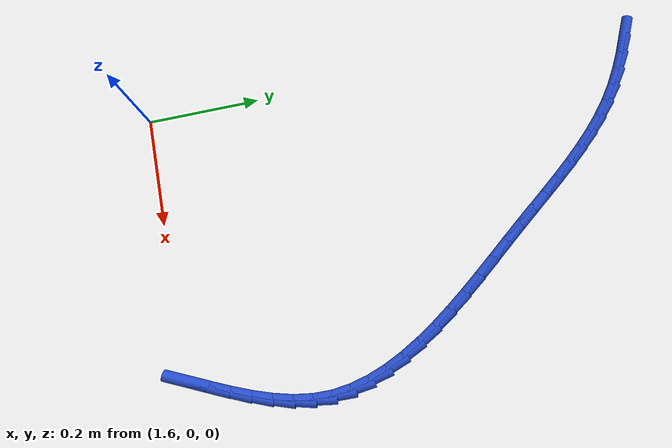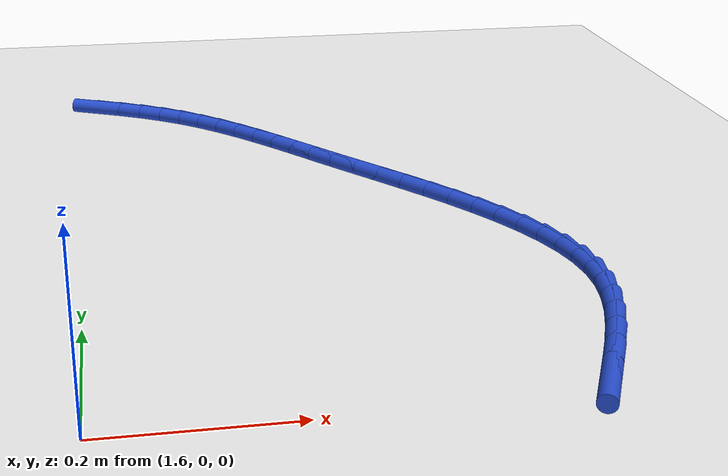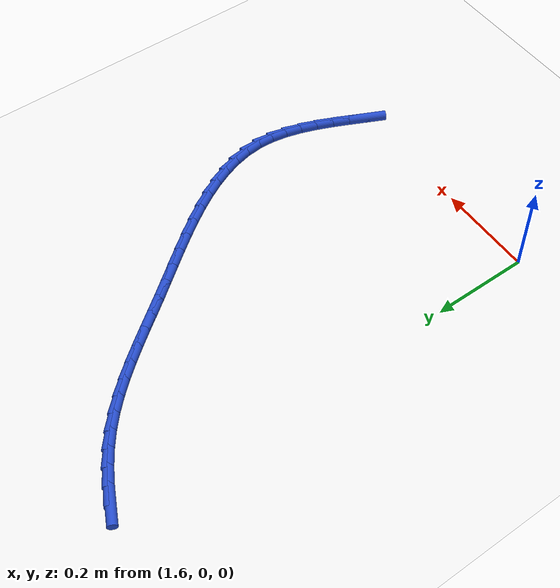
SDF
<sdf version="1.6">
 <world name="default">
  <model name="ground_plane">
   <static>1</static>
   <link name="link">
    <collision name="collision">
     <geometry><plane><normal>0 0 1</normal><size>100 100</size></plane></geometry>
     <surface><friction><ode><mu>100</mu><mu2>50</mu2></ode></friction></surface>
    </collision>
    <visual name="visual">
     <cast_shadows>0</cast_shadows>
     <geometry><plane><normal>0 0 1</normal><size>100 100</size></plane></geometry>
     <material>
      <script><uri>file://media/materials/scripts/gazebo.material</uri><name>Gazebo/WhiteGlow</name></script>
     </material>
    </visual>
   </link>
  </model>
  <model name="line">
   <link name="link_63">
    <pose>1.6247536107748575 0.8952613129556656 0.01 0 1.57 -0.44603642686886424</pose>
    <collision name="collision">
     <geometry><cylinder><radius>0.01</radius><length>0.08</length></cylinder></geometry>
    </collision>
    <visual name="visual">
     <material>
      <script><name>Gazebo/Blue</name><uri>file://media/materials/scripts/gazebo.material</uri></script>
     </material>
     <geometry><cylinder><radius>0.01</radius><length>0.08</length></cylinder></geometry>
    </visual>
   </link>
   <link name="link_64">
    <pose>1.6566459685300368 0.8800111548146987 0.01 0 1.57 -0.4962061280114834</pose>
    <collision name="collision">
     <geometry><cylinder><radius>0.01</radius><length>0.08</length></cylinder></geometry>
    </collision>
    <visual name="visual">
     <material>
      <script><name>Gazebo/Blue</name><uri>file://media/materials/scripts/gazebo.material</uri></script>
     </material>
     <geometry><cylinder><radius>0.01</radius><length>0.08</length></cylinder></geometry>
    </visual>
   </link>
   <link name="link_65">
    <pose>1.6873797987638326 0.863372273551867 0.01 0 1.57 -0.5567987017231645</pose>
    <collision name="collision">
     <geometry><cylinder><radius>0.01</radius><length>0.08</length></cylinder></geometry>
    </collision>
    <visual name="visual">
     <material>
      <script><name>Gazebo/Blue</name><uri>file://media/materials/scripts/gazebo.material</uri></script>
     </material>
     <geometry><cylinder><radius>0.01</radius><length>0.08</length></cylinder></geometry>
    </visual>
   </link>
   <link name="link_66">
    <pose>1.7167438791611238 0.8450931677503447 0.01 0 1.57 -0.627661396016519</pose>
    <collision name="collision">
     <geometry><cylinder><radius>0.01</radius><length>0.08</length></cylinder></geometry>
    </collision>
    <visual name="visual">
     <material>
      <script><name>Gazebo/Blue</name><uri>file://media/materials/scripts/gazebo.material</uri></script>
     </material>
     <geometry><cylinder><radius>0.01</radius><length>0.08</length></cylinder></geometry>
    </visual>
   </link>
   <link name="link_67">
    <pose>1.7445349018754455 0.8249296970740361 0.01 0 1.57 -0.6996685758827992</pose>
    <collision name="collision">
     <geometry><cylinder><radius>0.01</radius><length>0.08</length></cylinder></geometry>
    </collision>
    <visual name="visual">
     <material>
      <script><name>Gazebo/Blue</name><uri>file://media/materials/scripts/gazebo.material</uri></script>
     </material>
     <geometry><cylinder><radius>0.01</radius><length>0.08</length></cylinder></geometry>
    </visual>
   </link>
   <link name="link_68">
    <pose>1.7707724209945344 0.802845000381508 0.01 0 1.57 -0.7620269153508226</pose>
    <collision name="collision">
     <geometry><cylinder><radius>0.01</radius><length>0.08</length></cylinder></geometry>
    </collision>
    <visual name="visual">
     <material>
      <script><name>Gazebo/Blue</name><uri>file://media/materials/scripts/gazebo.material</uri></script>
     </material>
     <geometry><cylinder><radius>0.01</radius><length>0.08</length></cylinder></geometry>
    </visual>
   </link>
   <link name="link_69">
    <pose>1.7957242138897613 0.7790330837833489 0.01 0 1.57 -0.8135195737571825</pose>
    <collision name="collision">
     <geometry><cylinder><radius>0.01</radius><length>0.08</length></cylinder></geometry>
    </collision>
    <visual name="visual">
     <material>
      <script><name>Gazebo/Blue</name><uri>file://media/materials/scripts/gazebo.material</uri></script>
     </material>
     <geometry><cylinder><radius>0.01</radius><length>0.08</length></cylinder></geometry>
    </visual>
   </link>
   <link name="link_70">
    <pose>1.8196710631477928 0.7537000492671835 0.01 0 1.57 -0.8539752694724836</pose>
    <collision name="collision">
     <geometry><cylinder><radius>0.01</radius><length>0.08</length></cylinder></geometry>
    </collision>
    <visual name="visual">
     <material>
      <script><name>Gazebo/Blue</name><uri>file://media/materials/scripts/gazebo.material</uri></script>
     </material>
     <geometry><cylinder><radius>0.01</radius><length>0.08</length></cylinder></geometry>
    </visual>
   </link>
   <link name="link_71">
    <pose>1.8428937513552923 0.7270519988206351 0.01 0 1.57 -0.8835781484796419</pose>
    <collision name="collision">
     <geometry><cylinder><radius>0.01</radius><length>0.08</length></cylinder></geometry>
    </collision>
    <visual name="visual">
     <material>
      <script><name>Gazebo/Blue</name><uri>file://media/materials/scripts/gazebo.material</uri></script>
     </material>
     <geometry><cylinder><radius>0.01</radius><length>0.08</length></cylinder></geometry>
    </visual>
   </link>
   <link name="link_72">
    <pose>1.8656730610989243 0.6992950344313279 0.01 0 1.57 -0.9027095380230736</pose>
    <collision name="collision">
     <geometry><cylinder><radius>0.01</radius><length>0.08</length></cylinder></geometry>
    </collision>
    <visual name="visual">
     <material>
      <script><name>Gazebo/Blue</name><uri>file://media/materials/scripts/gazebo.material</uri></script>
     </material>
     <geometry><cylinder><radius>0.01</radius><length>0.08</length></cylinder></geometry>
    </visual>
   </link>
   <link name="link_73">
    <pose>1.8882897749653529 0.6706352580868865 0.01 0 1.57 -0.9118348684600265</pose>
    <collision name="collision">
     <geometry><cylinder><radius>0.01</radius><length>0.08</length></cylinder></geometry>
    </collision>
    <visual name="visual">
     <material>
      <script><name>Gazebo/Blue</name><uri>file://media/materials/scripts/gazebo.material</uri></script>
     </material>
     <geometry><cylinder><radius>0.01</radius><length>0.08</length></cylinder></geometry>
    </visual>
   </link>
   <link name="link_74">
    <pose>1.9110246755412441 0.6412787717749344 0.01 0 1.57 -0.9114366142136389</pose>
    <collision name="collision">
     <geometry><cylinder><radius>0.01</radius><length>0.08</length></cylinder></geometry>
    </collision>
    <visual name="visual">
     <material>
      <script><name>Gazebo/Blue</name><uri>file://media/materials/scripts/gazebo.material</uri></script>
     </material>
     <geometry><cylinder><radius>0.01</radius><length>0.08</length></cylinder></geometry>
    </visual>
   </link>
   <link name="link_75">
    <pose>1.9341585454132604 0.6114316774830958 0.01 0 1.57 -0.9031196025786804</pose>
    <collision name="collision">
     <geometry><cylinder><radius>0.01</radius><length>0.08</length></cylinder></geometry>
    </collision>
    <visual name="visual">
     <material>
      <script><name>Gazebo/Blue</name><uri>file://media/materials/scripts/gazebo.material</uri></script>
     </material>
     <geometry><cylinder><radius>0.01</radius><length>0.08</length></cylinder></geometry>
    </visual>
   </link>
   <link name="link_76">
    <pose>1.9579265021157801 0.5812876423112819 0.01 0 1.57 -0.8980377392042168</pose>
    <collision name="collision">
     <geometry><cylinder><radius>0.01</radius><length>0.08</length></cylinder></geometry>
    </collision>
    <visual name="visual">
     <material>
      <script><name>Gazebo/Blue</name><uri>file://media/materials/scripts/gazebo.material</uri></script>
     </material>
     <geometry><cylinder><radius>0.01</radius><length>0.08</length></cylinder></geometry>
    </visual>
   </link>
   <link name="link_77">
    <pose>1.9821219940752928 0.5509200640180136 0.01 0 1.57 -0.9020502291922409</pose>
    <collision name="collision">
     <geometry><cylinder><radius>0.01</radius><length>0.08</length></cylinder></geometry>
    </collision>
    <visual name="visual">
     <material>
      <script><name>Gazebo/Blue</name><uri>file://media/materials/scripts/gazebo.material</uri></script>
     </material>
     <geometry><cylinder><radius>0.01</radius><length>0.08</length></cylinder></geometry>
    </visual>
   </link>
   <link name="link_78">
    <pose>2.0062908484493267 0.5203349114961757 0.01 0 1.57 -0.9152042463221323</pose>
    <collision name="collision">
     <geometry><cylinder><radius>0.01</radius><length>0.08</length></cylinder></geometry>
    </collision>
    <visual name="visual">
     <material>
      <script><name>Gazebo/Blue</name><uri>file://media/materials/scripts/gazebo.material</uri></script>
     </material>
     <geometry><cylinder><radius>0.01</radius><length>0.08</length></cylinder></geometry>
    </visual>
   </link>
   <link name="link_79">
    <pose>2.0299761591989034 0.4895374093716484 0.01 0 1.57 -0.9378768997210858</pose>
    <collision name="collision">
     <geometry><cylinder><radius>0.01</radius><length>0.08</length></cylinder></geometry>
    </collision>
    <visual name="visual">
     <material>
      <script><name>Gazebo/Blue</name><uri>file://media/materials/scripts/gazebo.material</uri></script>
     </material>
     <geometry><cylinder><radius>0.01</radius><length>0.08</length></cylinder></geometry>
    </visual>
   </link>
   <link name="link_80">
    <pose>2.052721020285042 0.45853278227031197 0.01 0 1.57 -0.9708406109324291</pose>
    <collision name="collision">
     <geometry><cylinder><radius>0.01</radius><length>0.08</length></cylinder></geometry>
    </collision>
    <visual name="visual">
     <material>
      <script><name>Gazebo/Blue</name><uri>file://media/materials/scripts/gazebo.material</uri></script>
     </material>
     <geometry><cylinder><radius>0.01</radius><length>0.08</length></cylinder></geometry>
    </visual>
   </link>
   <link name="link_81">
    <pose>2.074068525668764 0.42732625481804587 0.01 0 1.57 -1.0152658053115904</pose>
    <collision name="collision">
     <geometry><cylinder><radius>0.01</radius><length>0.08</length></cylinder></geometry>
    </collision>
    <visual name="visual">
     <material>
      <script><name>Gazebo/Blue</name><uri>file://media/materials/scripts/gazebo.material</uri></script>
     </material>
     <geometry><cylinder><radius>0.01</radius><length>0.08</length></cylinder></geometry>
    </visual>
   </link>
   <link name="link_82">
    <pose>2.0935617693110897 0.39592305164073044 0.01 0 1.57 -1.0727035968628083</pose>
    <collision name="collision">
     <geometry><cylinder><radius>0.01</radius><length>0.08</length></cylinder></geometry>
    </collision>
    <visual name="visual">
     <material>
      <script><name>Gazebo/Blue</name><uri>file://media/materials/scripts/gazebo.material</uri></script>
     </material>
     <geometry><cylinder><radius>0.01</radius><length>0.08</length></cylinder></geometry>
    </visual>
   </link>
   <link name="link_83">
    <pose>2.110743845173039 0.3643283973642459 0.01 0 1.57 -1.144999790956496</pose>
    <collision name="collision">
     <geometry><cylinder><radius>0.01</radius><length>0.08</length></cylinder></geometry>
    </collision>
    <visual name="visual">
     <material>
      <script><name>Gazebo/Blue</name><uri>file://media/materials/scripts/gazebo.material</uri></script>
     </material>
     <geometry><cylinder><radius>0.01</radius><length>0.08</length></cylinder></geometry>
    </visual>
   </link>
   <link name="link_84">
    <pose>2.125157847215633 0.3325475166144716 0.01 0 1.57 -1.2340556377224994</pose>
    <collision name="collision">
     <geometry><cylinder><radius>0.01</radius><length>0.08</length></cylinder></geometry>
    </collision>
    <visual name="visual">
     <material>
      <script><name>Gazebo/Blue</name><uri>file://media/materials/scripts/gazebo.material</uri></script>
     </material>
     <geometry><cylinder><radius>0.01</radius><length>0.08</length></cylinder></geometry>
    </visual>
   </link>
   <link name="link_85">
    <pose>2.1363468693998917 0.300585634017288 0.01 0 1.57 -1.3413180328791525</pose>
    <collision name="collision">
     <geometry><cylinder><radius>0.01</radius><length>0.08</length></cylinder></geometry>
    </collision>
    <visual name="visual">
     <material>
      <script><name>Gazebo/Blue</name><uri>file://media/materials/scripts/gazebo.material</uri></script>
     </material>
     <geometry><cylinder><radius>0.01</radius><length>0.08</length></cylinder></geometry>
    </visual>
   </link>
   <link name="link_86">
    <pose>2.1438540056868356 0.26844797419857536 0.01 0 1.57 -1.4669150200431667</pose>
    <collision name="collision">
     <geometry><cylinder><radius>0.01</radius><length>0.08</length></cylinder></geometry>
    </collision>
    <visual name="visual">
     <material>
      <script><name>Gazebo/Blue</name><uri>file://media/materials/scripts/gazebo.material</uri></script>
     </material>
     <geometry><cylinder><radius>0.01</radius><length>0.08</length></cylinder></geometry>
    </visual>
   </link>
   <link name="link_87">
    <pose>2.1472223500374854 0.23613976178421298 0.01 0 1.57 1.5342226724860788</pose>
    <collision name="collision">
     <geometry><cylinder><radius>0.01</radius><length>0.08</length></cylinder></geometry>
    </collision>
    <visual name="visual">
     <material>
      <script><name>Gazebo/Blue</name><uri>file://media/materials/scripts/gazebo.material</uri></script>
     </material>
     <geometry><cylinder><radius>0.01</radius><length>0.08</length></cylinder></geometry>
    </visual>
   </link>
   <link name="link_88">
    <pose>2.1460341246283976 0.203665687715597 0.01 0 1.57 1.4027938292463527</pose>
    <collision name="collision">
     <geometry><cylinder><radius>0.01</radius><length>0.08</length></cylinder></geometry>
    </collision>
    <visual name="visual">
     <material>
      <script><name>Gazebo/Blue</name><uri>file://media/materials/scripts/gazebo.material</uri></script>
     </material>
     <geometry><cylinder><radius>0.01</radius><length>0.08</length></cylinder></geometry>
    </visual>
   </link>
   <link name="link_89">
    <pose>2.1404977007068133 0.1710219026508725 0.01 0 1.57 1.298302669824684</pose>
    <collision name="collision">
     <geometry><cylinder><radius>0.01</radius><length>0.08</length></cylinder></geometry>
    </collision>
    <visual name="visual">
     <material>
      <script><name>Gazebo/Blue</name><uri>file://media/materials/scripts/gazebo.material</uri></script>
     </material>
     <geometry><cylinder><radius>0.01</radius><length>0.08</length></cylinder></geometry>
    </visual>
   </link>
   <link name="link_90">
    <pose>2.1313251491390734 0.13819768709917077 0.01 0 1.57 1.2199756699011615</pose>
    <collision name="collision">
     <geometry><cylinder><radius>0.01</radius><length>0.08</length></cylinder></geometry>
    </collision>
    <visual name="visual">
     <material>
      <script><name>Gazebo/Blue</name><uri>file://media/materials/scripts/gazebo.material</uri></script>
     </material>
     <geometry><cylinder><radius>0.01</radius><length>0.08</length></cylinder></geometry>
    </visual>
   </link>
   <link name="link_91">
    <pose>2.1192428150095517 0.10518212687818061 0.01 0 1.57 1.1651528971414782</pose>
    <collision name="collision">
     <geometry><cylinder><radius>0.01</radius><length>0.08</length></cylinder></geometry>
    </collision>
    <visual name="visual">
     <material>
      <script><name>Gazebo/Blue</name><uri>file://media/materials/scripts/gazebo.material</uri></script>
     </material>
     <geometry><cylinder><radius>0.01</radius><length>0.08</length></cylinder></geometry>
    </visual>
   </link>
   <link name="link_92">
    <pose>2.10497704340262 0.07196430780559178 0.01 0 1.57 1.1311831728891777</pose>
    <collision name="collision">
     <geometry><cylinder><radius>0.01</radius><length>0.08</length></cylinder></geometry>
    </collision>
    <visual name="visual">
     <material>
      <script><name>Gazebo/Blue</name><uri>file://media/materials/scripts/gazebo.material</uri></script>
     </material>
     <geometry><cylinder><radius>0.01</radius><length>0.08</length></cylinder></geometry>
    </visual>
   </link>
   <link name="link_93">
    <pose>2.0892541794026536 0.038533315699094337 0.01 0 1.57 1.1160766449365476</pose>
    <collision name="collision">
     <geometry><cylinder><radius>0.01</radius><length>0.08</length></cylinder></geometry>
    </collision>
    <visual name="visual">
     <material>
      <script><name>Gazebo/Blue</name><uri>file://media/materials/scripts/gazebo.material</uri></script>
     </material>
     <geometry><cylinder><radius>0.01</radius><length>0.08</length></cylinder></geometry>
    </visual>
   </link>
   <link name="link_94">
    <pose>2.072800568094024 0.004878236376376851 0.01 0 1.57 1.1187112931609826</pose>
    <collision name="collision">
     <geometry><cylinder><radius>0.01</radius><length>0.08</length></cylinder></geometry>
    </collision>
    <visual name="visual">
     <material>
      <script><name>Gazebo/Blue</name><uri>file://media/materials/scripts/gazebo.material</uri></script>
     </material>
     <geometry><cylinder><radius>0.01</radius><length>0.08</length></cylinder></geometry>
    </visual>
   </link>
  </model>
 </world>
</sdf>
